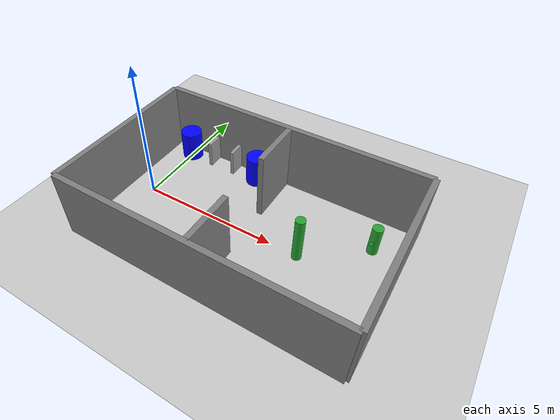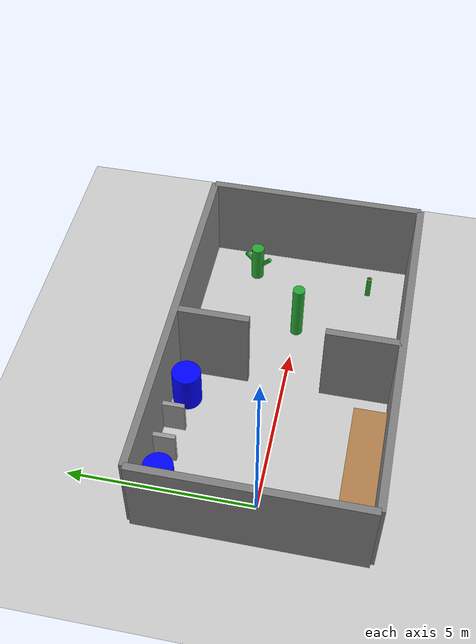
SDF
<sdf version="1.7">
 <world name="serra">
  <light name="sun" type="directional">
   <pose>0 0 10 0 -0 0</pose>
   <diffuse>0.8 0.8 0.8 1</diffuse>
   <specular>0.2 0.2 0.2 1</specular>
   <attenuation>
    <range>1000</range>
    <constant>0.9</constant>
    <linear>0.01</linear>
    <quadratic>0.001</quadratic>
   </attenuation>
   <direction>-0.5 0.1 -0.9</direction>
   <spot><inner_angle>0</inner_angle><outer_angle>0</outer_angle><falloff>0</falloff></spot>
  </light>
  <model name="ground_plane">
   <static>1</static>
   <link name="link">
    <collision name="collision">
     <geometry><plane><normal>0 0 1</normal><size>100 100</size></plane></geometry>
     <surface>
      <contact><collide_bitmask>65535</collide_bitmask></contact>
      <friction><ode><mu>100</mu><mu2>50</mu2></ode></friction>
     </surface>
    </collision>
    <visual name="visual">
     <cast_shadows>0</cast_shadows>
     <geometry><plane><normal>0 0 1</normal><size>100 100</size></plane></geometry>
     <material>
      <script><uri>file://media/materials/scripts/gazebo.material</uri><name>Gazebo/Grey</name></script>
     </material>
    </visual>
   </link>
  </model>
  <model name="muri_esterni">
   <static>1</static>
   <pose>4 0 0 0 -0 0</pose>
   <link name="walls">
    <visual name="wall_north_visual">
     <pose>0 3 1.25 0 -0 0</pose>
     <geometry><box><size>10 0.2 2.5</size></box></geometry>
     <material><ambient>0.5 0.5 0.5 1</ambient></material>
    </visual>
    <collision name="wall_north_collision">
     <pose>0 3 1.25 0 -0 0</pose>
     <geometry><box><size>10 0.2 2.5</size></box></geometry>
    </collision>
    <visual name="wall_south_visual">
     <pose>0 -3 1.25 0 -0 0</pose>
     <geometry><box><size>10 0.2 2.5</size></box></geometry>
     <material><ambient>0.5 0.5 0.5 1</ambient></material>
    </visual>
    <collision name="wall_south_collision">
     <pose>0 -3 1.25 0 -0 0</pose>
     <geometry><box><size>10 0.2 2.5</size></box></geometry>
    </collision>
    <visual name="wall_east_visual">
     <pose>5 0 1.25 0 -0 1.57</pose>
     <geometry><box><size>6 0.2 2.5</size></box></geometry>
     <material><ambient>0.5 0.5 0.5 1</ambient></material>
    </visual>
    <collision name="wall_east_collision">
     <pose>5 0 1.25 0 -0 1.57</pose>
     <geometry><box><size>6 0.2 2.5</size></box></geometry>
    </collision>
    <visual name="wall_west_visual">
     <pose>-5 0 1.25 0 -0 1.57</pose>
     <geometry><box><size>6 0.2 2.5</size></box></geometry>
     <material><ambient>0.5 0.5 0.5 1</ambient></material>
    </visual>
    <collision name="wall_west_collision">
     <pose>-5 0 1.25 0 -0 1.57</pose>
     <geometry><box><size>6 0.2 2.5</size></box></geometry>
    </collision>
    <visual name="wall_divider_north_visual">
     <pose>0 2 1.25 0 -0 1.57</pose>
     <geometry><box><size>2 0.2 2.5</size></box></geometry>
     <material><ambient>0.5 0.5 0.5 1</ambient></material>
    </visual>
    <collision name="wall_divider_north_collision">
     <pose>0 2 1.25 0 -0 1.57</pose>
     <geometry><box><size>2 0.2 2.5</size></box></geometry>
    </collision>
    <visual name="wall_divider_south_visual">
     <pose>0 -2 1.25 0 -0 1.57</pose>
     <geometry><box><size>2 0.2 2.5</size></box></geometry>
     <material><ambient>0.5 0.5 0.5 1</ambient></material>
    </visual>
    <collision name="wall_divider_south_collision">
     <pose>0 -2 1.25 0 -0 1.57</pose>
     <geometry><box><size>2 0.2 2.5</size></box></geometry>
    </collision>
   </link>
  </model>
  <model name="scrivania_comandante">
   <static>1</static>
   <pose>1.49644 -2.50953 0.4 0 -0 0</pose>
   <link name="link">
    <collision name="collision"><geometry><box><size>2.99662 0.983768 0.8</size></box></geometry></collision>
    <visual name="visual">
     <geometry><box><size>2.99662 0.983768 0.8</size></box></geometry>
     <material>
      <script><uri>file://media/materials/scripts/gazebo.material</uri><name>Gazebo/Wood</name></script>
     </material>
    </visual>
   </link>
  </model>
  <model name="pianta_1">
   <static>1</static>
   <pose>8.00437 1.51415 0.5 0 -0 0</pose>
   <link name="link">
    <collision name="collision">
     <geometry><cylinder><radius>0.182752</radius><length>1.20141</length></cylinder></geometry>
    </collision>
    <visual name="visual">
     <geometry><cylinder><radius>0.182752</radius><length>1.20141</length></cylinder></geometry>
     <material>
      <script><uri>file://media/materials/scripts/gazebo.material</uri><name>Gazebo/Green</name></script>
     </material>
    </visual>
   </link>
  </model>
  <model name="pianta_2">
   <static>1</static>
   <pose>7.86523 -1.86447 0.170368 0 -0 0</pose>
   <link name="link">
    <collision name="collision"><geometry><box><size>0.13935 0.14455 0.912592</size></box></geometry></collision>
    <visual name="visual">
     <geometry><box><size>0.13935 0.14455 0.912592</size></box></geometry>
     <material>
      <script><uri>file://media/materials/scripts/gazebo.material</uri><name>Gazebo/Green</name></script>
     </material>
    </visual>
   </link>
  </model>
  <model name="pianta_3">
   <static>1</static>
   <pose>6.00952 -0.014121 0.75 0 -0 0</pose>
   <link name="link">
    <collision name="collision">
     <geometry><cylinder><radius>0.168777</radius><length>1.93827</length></cylinder></geometry>
    </collision>
    <visual name="visual">
     <geometry><cylinder><radius>0.168777</radius><length>1.93827</length></cylinder></geometry>
     <material>
      <script><uri>file://media/materials/scripts/gazebo.material</uri><name>Gazebo/Green</name></script>
     </material>
    </visual>
   </link>
  </model>
  <gravity>0 0 -9.8</gravity>
  <magnetic_field>6e-06 2.3e-05 -4.2e-05</magnetic_field>
  <atmosphere type="adiabatic"/>
  <physics type="ode">
   <max_step_size>0.001</max_step_size>
   <real_time_factor>1</real_time_factor>
   <real_time_update_rate>1000</real_time_update_rate>
  </physics>
  <scene><ambient>0.4 0.4 0.4 1</ambient><background>0.7 0.7 0.7 1</background><shadows>1</shadows></scene>
  <spherical_coordinates>
   <surface_model>EARTH_WGS84</surface_model>
   <latitude_deg>0</latitude_deg>
   <longitude_deg>0</longitude_deg>
   <elevation>0</elevation>
   <heading_deg>0</heading_deg>
  </spherical_coordinates>
  <model name="pianta_1_clone">
   <static>1</static>
   <pose>7.98219 1.72185 0.736059 -0.726861 0 0</pose>
   <link name="link">
    <collision name="collision">
     <geometry><cylinder><radius>0.0642573</radius><length>0.36737</length></cylinder></geometry>
    </collision>
    <visual name="visual">
     <geometry><cylinder><radius>0.0642573</radius><length>0.36737</length></cylinder></geometry>
     <material>
      <script><uri>file://media/materials/scripts/gazebo.material</uri><name>Gazebo/Green</name></script>
     </material>
    </visual>
   </link>
  </model>
  <model name="pianta_1_clone_clone">
   <static>1</static>
   <pose>7.98231 1.2685 0.576387 0.799444 -0 0</pose>
   <link name="link">
    <collision name="collision">
     <geometry><cylinder><radius>0.0642572</radius><length>0.36737</length></cylinder></geometry>
    </collision>
    <visual name="visual">
     <geometry><cylinder><radius>0.0642572</radius><length>0.36737</length></cylinder></geometry>
     <material>
      <script><uri>file://media/materials/scripts/gazebo.material</uri><name>Gazebo/Green</name></script>
     </material>
    </visual>
   </link>
  </model>
  <model name="unit_box">
   <pose>1.00349 2.60522 0.499994 0 1e-06 -4e-06</pose>
   <link name="link">
    <inertial>
     <mass>1</mass>
     <inertia>
      <ixx>0.166667</ixx>
      <ixy>0</ixy>
      <ixz>0</ixz>
      <iyy>0.166667</iyy>
      <iyz>0</iyz>
      <izz>0.166667</izz>
     </inertia>
    </inertial>
    <collision name="collision"><geometry><box><size>0.129314 0.589551 1</size></box></geometry></collision>
    <visual name="visual">
     <geometry><box><size>0.129314 0.589551 1</size></box></geometry>
     <material>
      <script><name>Gazebo/Grey</name><uri>file://media/materials/scripts/gazebo.material</uri></script>
     </material>
    </visual>
   </link>
  </model>
  <model name="unit_box_clone">
   <pose>1.99992 2.60522 0.499996 0 1e-06 -4e-06</pose>
   <link name="link">
    <inertial>
     <mass>1</mass>
     <inertia>
      <ixx>0.166667</ixx>
      <ixy>0</ixy>
      <ixz>0</ixz>
      <iyy>0.166667</iyy>
      <iyz>0</iyz>
      <izz>0.166667</izz>
     </inertia>
    </inertial>
    <collision name="collision"><geometry><box><size>0.129314 0.589551 1</size></box></geometry></collision>
    <visual name="visual">
     <geometry><box><size>0.129314 0.589551 1</size></box></geometry>
     <material>
      <script><name>Gazebo/Grey</name><uri>file://media/materials/scripts/gazebo.material</uri></script>
     </material>
    </visual>
   </link>
  </model>
  <model name="cricket_ball">
   <link name="link">
    <pose>0 0 0.0375 0 -0 0</pose>
    <inertial>
     <mass>0.1467</mass>
     <inertia>
      <ixx>8.25187e-05</ixx>
      <ixy>0</ixy>
      <ixz>0</ixz>
      <iyy>8.25187e-05</iyy>
      <iyz>0</iyz>
      <izz>8.25187e-05</izz>
     </inertia>
    </inertial>
    <collision name="collision">
     <geometry><sphere><radius>0.0375</radius></sphere></geometry>
     <surface>
      <contact>
       <poissons_ratio>0.347</poissons_ratio>
       <elastic_modulus>8.8e+09</elastic_modulus>
       <ode><kp>100000</kp><kd>100</kd><max_vel>100</max_vel><min_depth>0.001</min_depth></ode>
      </contact>
      <friction>
       <torsional>
        <coefficient>1</coefficient>
        <use_patch_radius>0</use_patch_radius>
        <surface_radius>0.01</surface_radius>
       </torsional>
      </friction>
     </surface>
    </collision>
    <visual name="visual">
     <geometry><sphere><radius>0.0375</radius></sphere></geometry>
     <material>
      <script><uri>file://media/materials/scripts/gazebo.material</uri><name>Gazebo/Red</name></script>
     </material>
    </visual>
    <velocity_decay><linear>0</linear><angular>0.005</angular></velocity_decay>
   </link>
   <pose>7.86913 -1.86342 0.62565 0 -0 0</pose>
  </model>
  <model name="unit_cylinder">
   <link name="link">
    <inertial>
     <mass>1</mass>
     <inertia><ixx>0.145833</ixx><ixy>0</ixy><ixz>0</ixz><iyy>0.145833</iyy><iyz>0</iyz><izz>0.125</izz></inertia>
    </inertial>
    <visual name="visual">
     <geometry><cylinder><radius>0.395958</radius><length>1.13667</length></cylinder></geometry>
     <material>
      <script><name>Gazebo/Grey</name><uri>file://media/materials/scripts/gazebo.material</uri></script>
      <shader type="pixel"><normal_map>__default__</normal_map></shader>
      <ambient>0 0 1 0</ambient>
      <diffuse>0.7 0.7 0.7 1</diffuse>
      <specular>0.01 0.01 0.01 1</specular>
      <emissive>0 0 0 1</emissive>
     </material>
    </visual>
    <collision name="collision">
     <geometry><cylinder><radius>0.395958</radius><length>1.13667</length></cylinder></geometry>
     <surface>
      <friction>
       <ode><mu>1</mu><mu2>1</mu2><fdir1>0 0 0</fdir1><slip1>0</slip1><slip2>0</slip2></ode>
       <torsional>
        <coefficient>1</coefficient>
        <patch_radius>0</patch_radius>
        <surface_radius>0</surface_radius>
        <use_patch_radius>1</use_patch_radius>
        <ode><slip>0</slip></ode>
       </torsional>
      </friction>
      <bounce><restitution_coefficient>0</restitution_coefficient><threshold>1e+06</threshold></bounce>
      <contact>
       <collide_without_contact>0</collide_without_contact>
       <collide_without_contact_bitmask>1</collide_without_contact_bitmask>
       <collide_bitmask>1</collide_bitmask>
       <ode>
        <soft_cfm>0</soft_cfm>
        <soft_erp>0.2</soft_erp>
        <kp>1e+13</kp>
        <kd>1</kd>
        <max_vel>0.01</max_vel>
        <min_depth>0</min_depth>
       </ode>
       <bullet>
        <split_impulse>1</split_impulse>
        <split_impulse_penetration_threshold>-0.01</split_impulse_penetration_threshold>
        <soft_cfm>0</soft_cfm>
        <soft_erp>0.2</soft_erp>
        <kp>1e+13</kp>
        <kd>1</kd>
       </bullet>
      </contact>
     </surface>
    </collision>
   </link>
   <static>0</static>
   <pose>3 2.5 0.568332 0 -0 0</pose>
  </model>
  <model name="unit_cylinder_clone">
   <link name="link">
    <inertial>
     <mass>1</mass>
     <inertia><ixx>0.145833</ixx><ixy>0</ixy><ixz>0</ixz><iyy>0.145833</iyy><iyz>0</iyz><izz>0.125</izz></inertia>
    </inertial>
    <visual name="visual">
     <geometry><cylinder><radius>0.395958</radius><length>1.13667</length></cylinder></geometry>
     <material>
      <script><name>Gazebo/Grey</name><uri>file://media/materials/scripts/gazebo.material</uri></script>
      <shader type="pixel"><normal_map>__default__</normal_map></shader>
      <ambient>0 0 1 0</ambient>
      <diffuse>0.7 0.7 0.7 1</diffuse>
      <specular>0.01 0.01 0.01 1</specular>
      <emissive>0 0 0 1</emissive>
     </material>
    </visual>
    <collision name="collision">
     <geometry><cylinder><radius>0.395958</radius><length>1.13667</length></cylinder></geometry>
     <surface>
      <friction>
       <ode><mu>1</mu><mu2>1</mu2><fdir1>0 0 0</fdir1><slip1>0</slip1><slip2>0</slip2></ode>
       <torsional>
        <coefficient>1</coefficient>
        <patch_radius>0</patch_radius>
        <surface_radius>0</surface_radius>
        <use_patch_radius>1</use_patch_radius>
        <ode><slip>0</slip></ode>
       </torsional>
      </friction>
      <bounce><restitution_coefficient>0</restitution_coefficient><threshold>1e+06</threshold></bounce>
      <contact>
       <collide_without_contact>0</collide_without_contact>
       <collide_without_contact_bitmask>1</collide_without_contact_bitmask>
       <collide_bitmask>1</collide_bitmask>
       <ode>
        <soft_cfm>0</soft_cfm>
        <soft_erp>0.2</soft_erp>
        <kp>1e+13</kp>
        <kd>1</kd>
        <max_vel>0.01</max_vel>
        <min_depth>0</min_depth>
       </ode>
       <bullet>
        <split_impulse>1</split_impulse>
        <split_impulse_penetration_threshold>-0.01</split_impulse_penetration_threshold>
        <soft_cfm>0</soft_cfm>
        <soft_erp>0.2</soft_erp>
        <kp>1e+13</kp>
        <kd>1</kd>
       </bullet>
      </contact>
     </surface>
    </collision>
   </link>
   <static>0</static>
   <pose>0 2.5 0.568332 0 -0 0</pose>
  </model>
 </world>
</sdf>
